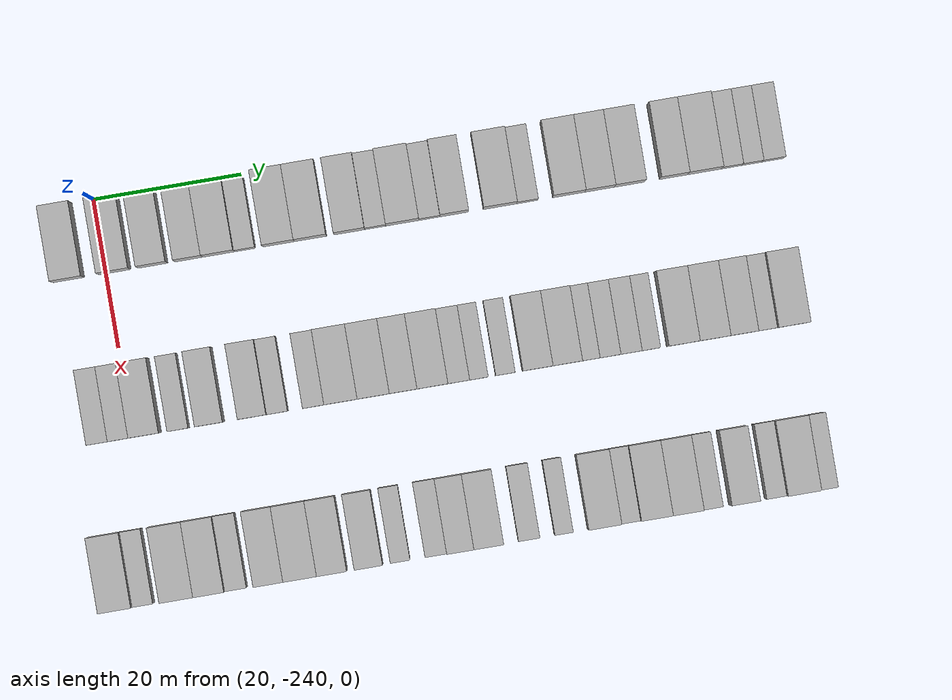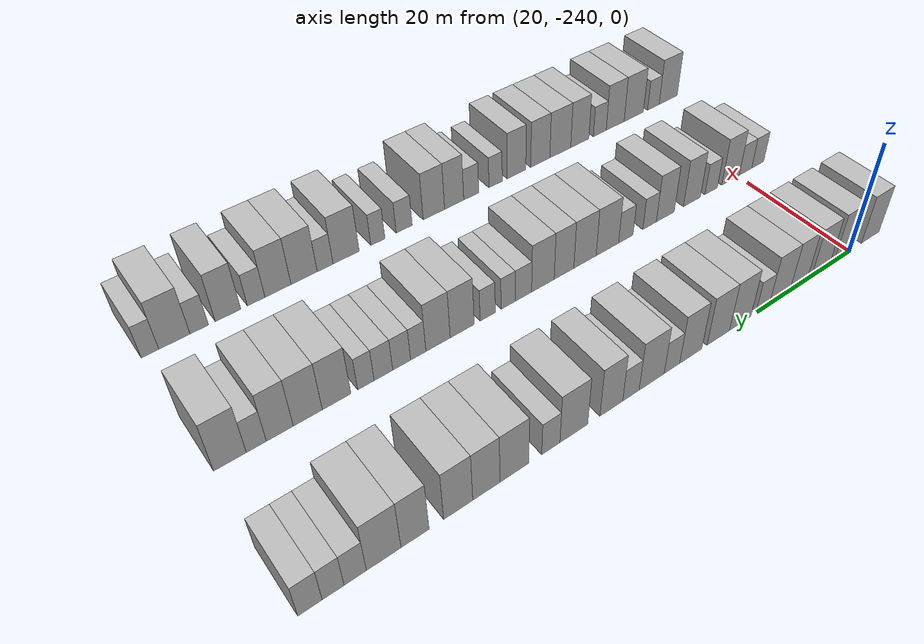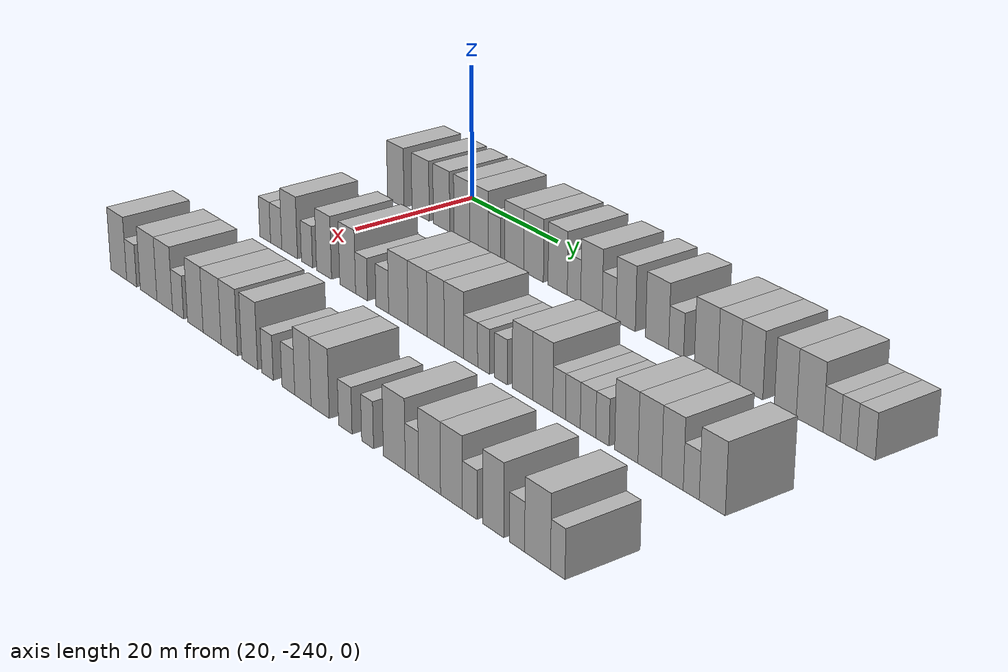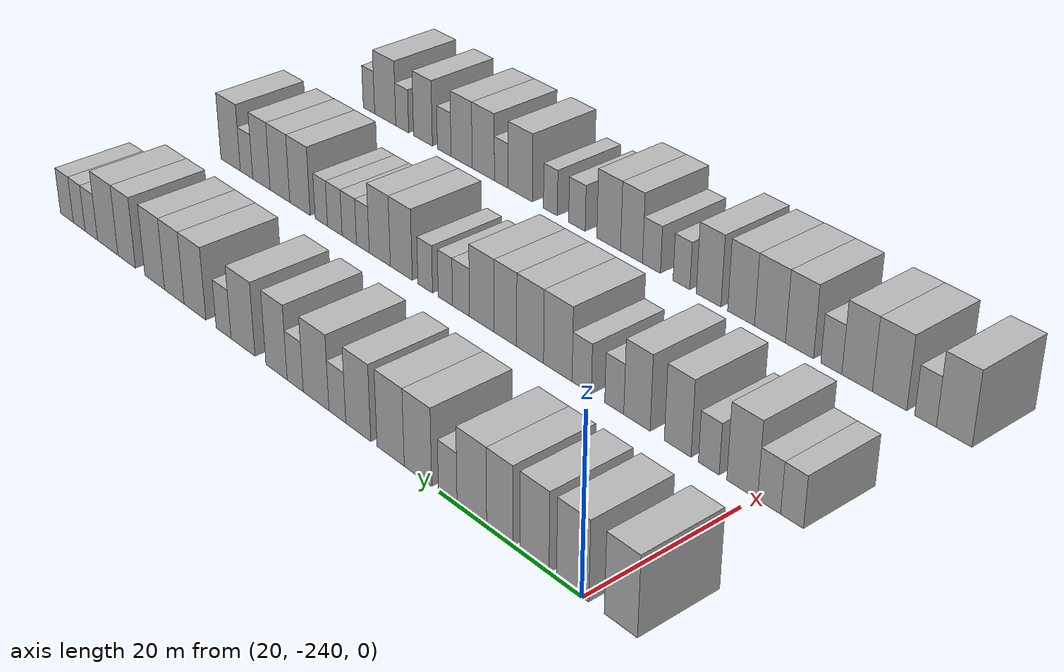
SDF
<sdf version="1.6">
 <world name="default">
  <model name="building_1">
   <static>1</static>
   <pose>25.0000 -244.9082 0 0.000000 0.000000 0.000000</pose>
   <link name="link">
    <pose>0 0 4.50 0 0 0</pose>
    <collision name="collision"><geometry><box><size>10.0000 4.1835 9.0000</size></box></geometry></collision>
    <visual name="visual">
     <cast_shadows>0</cast_shadows>
     <geometry><box><size>10.0000 4.1835 9.0000</size></box></geometry>
     <material>
      <script>
       <uri>model://HANNAS_wall/materials/scripts</uri>
       <uri>model://HANNAS_wall/materials/textures</uri>
       <name>vrc/HANNAS_wall</name>
      </script>
     </material>
    </visual>
   </link>
  </model>
  <model name="building_2">
   <static>1</static>
   <pose>25.0000 -238.6850 0 0.000000 0.000000 0.000000</pose>
   <link name="link">
    <pose>0 0 4.50 0 0 0</pose>
    <collision name="collision"><geometry><box><size>10.0000 4.2630 9.0000</size></box></geometry></collision>
    <visual name="visual">
     <cast_shadows>0</cast_shadows>
     <geometry><box><size>10.0000 4.2630 9.0000</size></box></geometry>
     <material>
      <script>
       <uri>model://HANNAS_wall/materials/scripts</uri>
       <uri>model://HANNAS_wall/materials/textures</uri>
       <name>vrc/HANNAS_wall</name>
      </script>
     </material>
    </visual>
   </link>
  </model>
  <model name="building_3">
   <static>1</static>
   <pose>25.0000 -233.5706 0 0.000000 0.000000 0.000000</pose>
   <link name="link">
    <pose>0 0 4.50 0 0 0</pose>
    <collision name="collision"><geometry><box><size>10.0000 3.9658 9.0000</size></box></geometry></collision>
    <visual name="visual">
     <cast_shadows>0</cast_shadows>
     <geometry><box><size>10.0000 3.9658 9.0000</size></box></geometry>
     <material>
      <script>
       <uri>model://HANNAS_wall/materials/scripts</uri>
       <uri>model://HANNAS_wall/materials/textures</uri>
       <name>vrc/HANNAS_wall</name>
      </script>
     </material>
    </visual>
   </link>
  </model>
  <model name="building_4">
   <static>1</static>
   <pose>25.0000 -228.7367 0 0.000000 0.000000 0.000000</pose>
   <link name="link">
    <pose>0 0 4.50 0 0 0</pose>
    <collision name="collision"><geometry><box><size>10.0000 3.7020 9.0000</size></box></geometry></collision>
    <visual name="visual">
     <cast_shadows>0</cast_shadows>
     <geometry><box><size>10.0000 3.7020 9.0000</size></box></geometry>
     <material>
      <script>
       <uri>model://HANNAS_wall/materials/scripts</uri>
       <uri>model://HANNAS_wall/materials/textures</uri>
       <name>vrc/HANNAS_wall</name>
      </script>
     </material>
    </visual>
   </link>
  </model>
  <model name="building_5">
   <static>1</static>
   <pose>25.0000 -224.7353 0 0.000000 0.000000 0.000000</pose>
   <link name="link">
    <pose>0 0 4.50 0 0 0</pose>
    <collision name="collision"><geometry><box><size>10.0000 4.3007 9.0000</size></box></geometry></collision>
    <visual name="visual">
     <cast_shadows>0</cast_shadows>
     <geometry><box><size>10.0000 4.3007 9.0000</size></box></geometry>
     <material>
      <script>
       <uri>model://HANNAS_wall/materials/scripts</uri>
       <uri>model://HANNAS_wall/materials/textures</uri>
       <name>vrc/HANNAS_wall</name>
      </script>
     </material>
    </visual>
   </link>
  </model>
  <model name="building_6">
   <static>1</static>
   <pose>25.0000 -221.1922 0 0.000000 0.000000 0.000000</pose>
   <link name="link">
    <pose>0 0 3.00 0 0 0</pose>
    <collision name="collision"><geometry><box><size>10.0000 2.7856 6.0000</size></box></geometry></collision>
    <visual name="visual">
     <cast_shadows>0</cast_shadows>
     <geometry><box><size>10.0000 2.7856 6.0000</size></box></geometry>
     <material>
      <script>
       <uri>model://HANNAS_wall/materials/scripts</uri>
       <uri>model://HANNAS_wall/materials/textures</uri>
       <name>vrc/HANNAS_wall</name>
      </script>
     </material>
    </visual>
   </link>
  </model>
  <model name="building_7">
   <static>1</static>
   <pose>25.0000 -216.6792 0 0.000000 0.000000 0.000000</pose>
   <link name="link">
    <pose>0 0 4.50 0 0 0</pose>
    <collision name="collision"><geometry><box><size>10.0000 4.2403 9.0000</size></box></geometry></collision>
    <visual name="visual">
     <cast_shadows>0</cast_shadows>
     <geometry><box><size>10.0000 4.2403 9.0000</size></box></geometry>
     <material>
      <script>
       <uri>model://HANNAS_wall/materials/scripts</uri>
       <uri>model://HANNAS_wall/materials/textures</uri>
       <name>vrc/HANNAS_wall</name>
      </script>
     </material>
    </visual>
   </link>
  </model>
  <model name="building_8">
   <static>1</static>
   <pose>25.0000 -212.3979 0 0.000000 0.000000 0.000000</pose>
   <link name="link">
    <pose>0 0 4.50 0 0 0</pose>
    <collision name="collision"><geometry><box><size>10.0000 4.3224 9.0000</size></box></geometry></collision>
    <visual name="visual">
     <cast_shadows>0</cast_shadows>
     <geometry><box><size>10.0000 4.3224 9.0000</size></box></geometry>
     <material>
      <script>
       <uri>model://HANNAS_wall/materials/scripts</uri>
       <uri>model://HANNAS_wall/materials/textures</uri>
       <name>vrc/HANNAS_wall</name>
      </script>
     </material>
    </visual>
   </link>
  </model>
  <model name="building_9">
   <static>1</static>
   <pose>25.0000 -207.1791 0 0.000000 0.000000 0.000000</pose>
   <link name="link">
    <pose>0 0 4.50 0 0 0</pose>
    <collision name="collision"><geometry><box><size>10.0000 4.1153 9.0000</size></box></geometry></collision>
    <visual name="visual">
     <cast_shadows>0</cast_shadows>
     <geometry><box><size>10.0000 4.1153 9.0000</size></box></geometry>
     <material>
      <script>
       <uri>model://HANNAS_wall/materials/scripts</uri>
       <uri>model://HANNAS_wall/materials/textures</uri>
       <name>vrc/HANNAS_wall</name>
      </script>
     </material>
    </visual>
   </link>
  </model>
  <model name="building_10">
   <static>1</static>
   <pose>25.0000 -203.7104 0 0.000000 0.000000 0.000000</pose>
   <link name="link">
    <pose>0 0 3.00 0 0 0</pose>
    <collision name="collision"><geometry><box><size>10.0000 2.8221 6.0000</size></box></geometry></collision>
    <visual name="visual">
     <cast_shadows>0</cast_shadows>
     <geometry><box><size>10.0000 2.8221 6.0000</size></box></geometry>
     <material>
      <script>
       <uri>model://HANNAS_wall/materials/scripts</uri>
       <uri>model://HANNAS_wall/materials/textures</uri>
       <name>vrc/HANNAS_wall</name>
      </script>
     </material>
    </visual>
   </link>
  </model>
  <model name="building_11">
   <static>1</static>
   <pose>25.0000 -200.0836 0 0.000000 0.000000 0.000000</pose>
   <link name="link">
    <pose>0 0 4.50 0 0 0</pose>
    <collision name="collision"><geometry><box><size>10.0000 4.4316 9.0000</size></box></geometry></collision>
    <visual name="visual">
     <cast_shadows>0</cast_shadows>
     <geometry><box><size>10.0000 4.4316 9.0000</size></box></geometry>
     <material>
      <script>
       <uri>model://HANNAS_wall/materials/scripts</uri>
       <uri>model://HANNAS_wall/materials/textures</uri>
       <name>vrc/HANNAS_wall</name>
      </script>
     </material>
    </visual>
   </link>
  </model>
  <model name="building_12">
   <static>1</static>
   <pose>25.0000 -196.4589 0 0.000000 0.000000 0.000000</pose>
   <link name="link">
    <pose>0 0 3.00 0 0 0</pose>
    <collision name="collision"><geometry><box><size>10.0000 2.8177 6.0000</size></box></geometry></collision>
    <visual name="visual">
     <cast_shadows>0</cast_shadows>
     <geometry><box><size>10.0000 2.8177 6.0000</size></box></geometry>
     <material>
      <script>
       <uri>model://HANNAS_wall/materials/scripts</uri>
       <uri>model://HANNAS_wall/materials/textures</uri>
       <name>vrc/HANNAS_wall</name>
      </script>
     </material>
    </visual>
   </link>
  </model>
  <model name="building_13">
   <static>1</static>
   <pose>25.0000 -193.1327 0 0.000000 0.000000 0.000000</pose>
   <link name="link">
    <pose>0 0 4.50 0 0 0</pose>
    <collision name="collision"><geometry><box><size>10.0000 3.8347 9.0000</size></box></geometry></collision>
    <visual name="visual">
     <cast_shadows>0</cast_shadows>
     <geometry><box><size>10.0000 3.8347 9.0000</size></box></geometry>
     <material>
      <script>
       <uri>model://HANNAS_wall/materials/scripts</uri>
       <uri>model://HANNAS_wall/materials/textures</uri>
       <name>vrc/HANNAS_wall</name>
      </script>
     </material>
    </visual>
   </link>
  </model>
  <model name="building_14">
   <static>1</static>
   <pose>25.0000 -186.9744 0 0.000000 0.000000 0.000000</pose>
   <link name="link">
    <pose>0 0 4.50 0 0 0</pose>
    <collision name="collision"><geometry><box><size>10.0000 4.4820 9.0000</size></box></geometry></collision>
    <visual name="visual">
     <cast_shadows>0</cast_shadows>
     <geometry><box><size>10.0000 4.4820 9.0000</size></box></geometry>
     <material>
      <script>
       <uri>model://HANNAS_wall/materials/scripts</uri>
       <uri>model://HANNAS_wall/materials/textures</uri>
       <name>vrc/HANNAS_wall</name>
      </script>
     </material>
    </visual>
   </link>
  </model>
  <model name="building_15">
   <static>1</static>
   <pose>25.0000 -183.3123 0 0.000000 0.000000 0.000000</pose>
   <link name="link">
    <pose>0 0 3.00 0 0 0</pose>
    <collision name="collision"><geometry><box><size>10.0000 2.8422 6.0000</size></box></geometry></collision>
    <visual name="visual">
     <cast_shadows>0</cast_shadows>
     <geometry><box><size>10.0000 2.8422 6.0000</size></box></geometry>
     <material>
      <script>
       <uri>model://HANNAS_wall/materials/scripts</uri>
       <uri>model://HANNAS_wall/materials/textures</uri>
       <name>vrc/HANNAS_wall</name>
      </script>
     </material>
    </visual>
   </link>
  </model>
  <model name="building_16">
   <static>1</static>
   <pose>25.0000 -177.7389 0 0.000000 0.000000 0.000000</pose>
   <link name="link">
    <pose>0 0 4.50 0 0 0</pose>
    <collision name="collision"><geometry><box><size>10.0000 4.3045 9.0000</size></box></geometry></collision>
    <visual name="visual">
     <cast_shadows>0</cast_shadows>
     <geometry><box><size>10.0000 4.3045 9.0000</size></box></geometry>
     <material>
      <script>
       <uri>model://HANNAS_wall/materials/scripts</uri>
       <uri>model://HANNAS_wall/materials/textures</uri>
       <name>vrc/HANNAS_wall</name>
      </script>
     </material>
    </visual>
   </link>
  </model>
  <model name="building_17">
   <static>1</static>
   <pose>25.0000 -173.6084 0 0.000000 0.000000 0.000000</pose>
   <link name="link">
    <pose>0 0 4.50 0 0 0</pose>
    <collision name="collision"><geometry><box><size>10.0000 3.9565 9.0000</size></box></geometry></collision>
    <visual name="visual">
     <cast_shadows>0</cast_shadows>
     <geometry><box><size>10.0000 3.9565 9.0000</size></box></geometry>
     <material>
      <script>
       <uri>model://HANNAS_wall/materials/scripts</uri>
       <uri>model://HANNAS_wall/materials/textures</uri>
       <name>vrc/HANNAS_wall</name>
      </script>
     </material>
    </visual>
   </link>
  </model>
  <model name="building_18">
   <static>1</static>
   <pose>25.0000 -169.5832 0 0.000000 0.000000 0.000000</pose>
   <link name="link">
    <pose>0 0 4.50 0 0 0</pose>
    <collision name="collision"><geometry><box><size>10.0000 4.0939 9.0000</size></box></geometry></collision>
    <visual name="visual">
     <cast_shadows>0</cast_shadows>
     <geometry><box><size>10.0000 4.0939 9.0000</size></box></geometry>
     <material>
      <script>
       <uri>model://HANNAS_wall/materials/scripts</uri>
       <uri>model://HANNAS_wall/materials/textures</uri>
       <name>vrc/HANNAS_wall</name>
      </script>
     </material>
    </visual>
   </link>
  </model>
  <model name="building_19">
   <static>1</static>
   <pose>25.0000 -163.6562 0 0.000000 0.000000 0.000000</pose>
   <link name="link">
    <pose>0 0 4.50 0 0 0</pose>
    <collision name="collision"><geometry><box><size>10.0000 3.7602 9.0000</size></box></geometry></collision>
    <visual name="visual">
     <cast_shadows>0</cast_shadows>
     <geometry><box><size>10.0000 3.7602 9.0000</size></box></geometry>
     <material>
      <script>
       <uri>model://HANNAS_wall/materials/scripts</uri>
       <uri>model://HANNAS_wall/materials/textures</uri>
       <name>vrc/HANNAS_wall</name>
      </script>
     </material>
    </visual>
   </link>
  </model>
  <model name="building_20">
   <static>1</static>
   <pose>25.0000 -159.5274 0 0.000000 0.000000 0.000000</pose>
   <link name="link">
    <pose>0 0 4.50 0 0 0</pose>
    <collision name="collision"><geometry><box><size>10.0000 4.4974 9.0000</size></box></geometry></collision>
    <visual name="visual">
     <cast_shadows>0</cast_shadows>
     <geometry><box><size>10.0000 4.4974 9.0000</size></box></geometry>
     <material>
      <script>
       <uri>model://HANNAS_wall/materials/scripts</uri>
       <uri>model://HANNAS_wall/materials/textures</uri>
       <name>vrc/HANNAS_wall</name>
      </script>
     </material>
    </visual>
   </link>
  </model>
  <model name="building_21">
   <static>1</static>
   <pose>25.0000 -155.8811 0 0.000000 0.000000 0.000000</pose>
   <link name="link">
    <pose>0 0 3.00 0 0 0</pose>
    <collision name="collision"><geometry><box><size>10.0000 2.7952 6.0000</size></box></geometry></collision>
    <visual name="visual">
     <cast_shadows>0</cast_shadows>
     <geometry><box><size>10.0000 2.7952 6.0000</size></box></geometry>
     <material>
      <script>
       <uri>model://HANNAS_wall/materials/scripts</uri>
       <uri>model://HANNAS_wall/materials/textures</uri>
       <name>vrc/HANNAS_wall</name>
      </script>
     </material>
    </visual>
   </link>
  </model>
  <model name="building_22">
   <static>1</static>
   <pose>25.0000 -153.1354 0 0.000000 0.000000 0.000000</pose>
   <link name="link">
    <pose>0 0 3.00 0 0 0</pose>
    <collision name="collision"><geometry><box><size>10.0000 2.6961 6.0000</size></box></geometry></collision>
    <visual name="visual">
     <cast_shadows>0</cast_shadows>
     <geometry><box><size>10.0000 2.6961 6.0000</size></box></geometry>
     <material>
      <script>
       <uri>model://HANNAS_wall/materials/scripts</uri>
       <uri>model://HANNAS_wall/materials/textures</uri>
       <name>vrc/HANNAS_wall</name>
      </script>
     </material>
    </visual>
   </link>
  </model>
  <model name="building_23">
   <static>1</static>
   <pose>25.0000 -150.3138 0 0.000000 0.000000 0.000000</pose>
   <link name="link">
    <pose>0 0 3.00 0 0 0</pose>
    <collision name="collision"><geometry><box><size>10.0000 2.9470 6.0000</size></box></geometry></collision>
    <visual name="visual">
     <cast_shadows>0</cast_shadows>
     <geometry><box><size>10.0000 2.9470 6.0000</size></box></geometry>
     <material>
      <script>
       <uri>model://HANNAS_wall/materials/scripts</uri>
       <uri>model://HANNAS_wall/materials/textures</uri>
       <name>vrc/HANNAS_wall</name>
      </script>
     </material>
    </visual>
   </link>
  </model>
  <model name="building_124">
   <static>1</static>
   <pose>47.0000 -244.5716 0 0.000000 0.000000 0.000000</pose>
   <link name="link">
    <pose>0 0 3.00 0 0 0</pose>
    <collision name="collision"><geometry><box><size>10.0000 2.8569 6.0000</size></box></geometry></collision>
    <visual name="visual">
     <cast_shadows>0</cast_shadows>
     <geometry><box><size>10.0000 2.8569 6.0000</size></box></geometry>
     <material>
      <script>
       <uri>model://HANNAS_wall/materials/scripts</uri>
       <uri>model://HANNAS_wall/materials/textures</uri>
       <name>vrc/HANNAS_wall</name>
      </script>
     </material>
    </visual>
   </link>
  </model>
  <model name="building_125">
   <static>1</static>
   <pose>47.0000 -241.6814 0 0.000000 0.000000 0.000000</pose>
   <link name="link">
    <pose>0 0 3.00 0 0 0</pose>
    <collision name="collision"><geometry><box><size>10.0000 2.9236 6.0000</size></box></geometry></collision>
    <visual name="visual">
     <cast_shadows>0</cast_shadows>
     <geometry><box><size>10.0000 2.9236 6.0000</size></box></geometry>
     <material>
      <script>
       <uri>model://HANNAS_wall/materials/scripts</uri>
       <uri>model://HANNAS_wall/materials/textures</uri>
       <name>vrc/HANNAS_wall</name>
      </script>
     </material>
    </visual>
   </link>
  </model>
  <model name="building_126">
   <static>1</static>
   <pose>47.0000 -238.2048 0 0.000000 0.000000 0.000000</pose>
   <link name="link">
    <pose>0 0 4.50 0 0 0</pose>
    <collision name="collision"><geometry><box><size>10.0000 4.0295 9.0000</size></box></geometry></collision>
    <visual name="visual">
     <cast_shadows>0</cast_shadows>
     <geometry><box><size>10.0000 4.0295 9.0000</size></box></geometry>
     <material>
      <script>
       <uri>model://HANNAS_wall/materials/scripts</uri>
       <uri>model://HANNAS_wall/materials/textures</uri>
       <name>vrc/HANNAS_wall</name>
      </script>
     </material>
    </visual>
   </link>
  </model>
  <model name="building_127">
   <static>1</static>
   <pose>47.0000 -233.7948 0 0.000000 0.000000 0.000000</pose>
   <link name="link">
    <pose>0 0 3.00 0 0 0</pose>
    <collision name="collision"><geometry><box><size>10.0000 2.7905 6.0000</size></box></geometry></collision>
    <visual name="visual">
     <cast_shadows>0</cast_shadows>
     <geometry><box><size>10.0000 2.7905 6.0000</size></box></geometry>
     <material>
      <script>
       <uri>model://HANNAS_wall/materials/scripts</uri>
       <uri>model://HANNAS_wall/materials/textures</uri>
       <name>vrc/HANNAS_wall</name>
      </script>
     </material>
    </visual>
   </link>
  </model>
  <model name="building_128">
   <static>1</static>
   <pose>47.0000 -229.5479 0 0.000000 0.000000 0.000000</pose>
   <link name="link">
    <pose>0 0 4.50 0 0 0</pose>
    <collision name="collision"><geometry><box><size>10.0000 3.7033 9.0000</size></box></geometry></collision>
    <visual name="visual">
     <cast_shadows>0</cast_shadows>
     <geometry><box><size>10.0000 3.7033 9.0000</size></box></geometry>
     <material>
      <script>
       <uri>model://HANNAS_wall/materials/scripts</uri>
       <uri>model://HANNAS_wall/materials/textures</uri>
       <name>vrc/HANNAS_wall</name>
      </script>
     </material>
    </visual>
   </link>
  </model>
  <model name="building_129">
   <static>1</static>
   <pose>47.0000 -223.8020 0 0.000000 0.000000 0.000000</pose>
   <link name="link">
    <pose>0 0 4.50 0 0 0</pose>
    <collision name="collision"><geometry><box><size>10.0000 3.7887 9.0000</size></box></geometry></collision>
    <visual name="visual">
     <cast_shadows>0</cast_shadows>
     <geometry><box><size>10.0000 3.7887 9.0000</size></box></geometry>
     <material>
      <script>
       <uri>model://HANNAS_wall/materials/scripts</uri>
       <uri>model://HANNAS_wall/materials/textures</uri>
       <name>vrc/HANNAS_wall</name>
      </script>
     </material>
    </visual>
   </link>
  </model>
  <model name="building_130">
   <static>1</static>
   <pose>47.0000 -220.5128 0 0.000000 0.000000 0.000000</pose>
   <link name="link">
    <pose>0 0 3.00 0 0 0</pose>
    <collision name="collision"><geometry><box><size>10.0000 2.7896 6.0000</size></box></geometry></collision>
    <visual name="visual">
     <cast_shadows>0</cast_shadows>
     <geometry><box><size>10.0000 2.7896 6.0000</size></box></geometry>
     <material>
      <script>
       <uri>model://HANNAS_wall/materials/scripts</uri>
       <uri>model://HANNAS_wall/materials/textures</uri>
       <name>vrc/HANNAS_wall</name>
      </script>
     </material>
    </visual>
   </link>
  </model>
  <model name="building_131">
   <static>1</static>
   <pose>47.0000 -215.6573 0 0.000000 0.000000 0.000000</pose>
   <link name="link">
    <pose>0 0 3.00 0 0 0</pose>
    <collision name="collision"><geometry><box><size>10.0000 2.9215 6.0000</size></box></geometry></collision>
    <visual name="visual">
     <cast_shadows>0</cast_shadows>
     <geometry><box><size>10.0000 2.9215 6.0000</size></box></geometry>
     <material>
      <script>
       <uri>model://HANNAS_wall/materials/scripts</uri>
       <uri>model://HANNAS_wall/materials/textures</uri>
       <name>vrc/HANNAS_wall</name>
      </script>
     </material>
    </visual>
   </link>
  </model>
  <model name="building_132">
   <static>1</static>
   <pose>47.0000 -211.9879 0 0.000000 0.000000 0.000000</pose>
   <link name="link">
    <pose>0 0 4.50 0 0 0</pose>
    <collision name="collision"><geometry><box><size>10.0000 4.4173 9.0000</size></box></geometry></collision>
    <visual name="visual">
     <cast_shadows>0</cast_shadows>
     <geometry><box><size>10.0000 4.4173 9.0000</size></box></geometry>
     <material>
      <script>
       <uri>model://HANNAS_wall/materials/scripts</uri>
       <uri>model://HANNAS_wall/materials/textures</uri>
       <name>vrc/HANNAS_wall</name>
      </script>
     </material>
    </visual>
   </link>
  </model>
  <model name="building_133">
   <static>1</static>
   <pose>47.0000 -207.6420 0 0.000000 0.000000 0.000000</pose>
   <link name="link">
    <pose>0 0 4.50 0 0 0</pose>
    <collision name="collision"><geometry><box><size>10.0000 4.2745 9.0000</size></box></geometry></collision>
    <visual name="visual">
     <cast_shadows>0</cast_shadows>
     <geometry><box><size>10.0000 4.2745 9.0000</size></box></geometry>
     <material>
      <script>
       <uri>model://HANNAS_wall/materials/scripts</uri>
       <uri>model://HANNAS_wall/materials/textures</uri>
       <name>vrc/HANNAS_wall</name>
      </script>
     </material>
    </visual>
   </link>
  </model>
  <model name="building_134">
   <static>1</static>
   <pose>47.0000 -203.6676 0 0.000000 0.000000 0.000000</pose>
   <link name="link">
    <pose>0 0 4.50 0 0 0</pose>
    <collision name="collision"><geometry><box><size>10.0000 3.6743 9.0000</size></box></geometry></collision>
    <visual name="visual">
     <cast_shadows>0</cast_shadows>
     <geometry><box><size>10.0000 3.6743 9.0000</size></box></geometry>
     <material>
      <script>
       <uri>model://HANNAS_wall/materials/scripts</uri>
       <uri>model://HANNAS_wall/materials/textures</uri>
       <name>vrc/HANNAS_wall</name>
      </script>
     </material>
    </visual>
   </link>
  </model>
  <model name="building_135">
   <static>1</static>
   <pose>47.0000 -199.7702 0 0.000000 0.000000 0.000000</pose>
   <link name="link">
    <pose>0 0 4.50 0 0 0</pose>
    <collision name="collision"><geometry><box><size>10.0000 4.1204 9.0000</size></box></geometry></collision>
    <visual name="visual">
     <cast_shadows>0</cast_shadows>
     <geometry><box><size>10.0000 4.1204 9.0000</size></box></geometry>
     <material>
      <script>
       <uri>model://HANNAS_wall/materials/scripts</uri>
       <uri>model://HANNAS_wall/materials/textures</uri>
       <name>vrc/HANNAS_wall</name>
      </script>
     </material>
    </visual>
   </link>
  </model>
  <model name="building_136">
   <static>1</static>
   <pose>47.0000 -196.2594 0 0.000000 0.000000 0.000000</pose>
   <link name="link">
    <pose>0 0 3.00 0 0 0</pose>
    <collision name="collision"><geometry><box><size>10.0000 2.9012 6.0000</size></box></geometry></collision>
    <visual name="visual">
     <cast_shadows>0</cast_shadows>
     <geometry><box><size>10.0000 2.9012 6.0000</size></box></geometry>
     <material>
      <script>
       <uri>model://HANNAS_wall/materials/scripts</uri>
       <uri>model://HANNAS_wall/materials/textures</uri>
       <name>vrc/HANNAS_wall</name>
      </script>
     </material>
    </visual>
   </link>
  </model>
  <model name="building_137">
   <static>1</static>
   <pose>47.0000 -193.5684 0 0.000000 0.000000 0.000000</pose>
   <link name="link">
    <pose>0 0 3.00 0 0 0</pose>
    <collision name="collision"><geometry><box><size>10.0000 2.4809 6.0000</size></box></geometry></collision>
    <visual name="visual">
     <cast_shadows>0</cast_shadows>
     <geometry><box><size>10.0000 2.4809 6.0000</size></box></geometry>
     <material>
      <script>
       <uri>model://HANNAS_wall/materials/scripts</uri>
       <uri>model://HANNAS_wall/materials/textures</uri>
       <name>vrc/HANNAS_wall</name>
      </script>
     </material>
    </visual>
   </link>
  </model>
  <model name="building_138">
   <static>1</static>
   <pose>47.0000 -190.0298 0 0.000000 0.000000 0.000000</pose>
   <link name="link">
    <pose>0 0 3.00 0 0 0</pose>
    <collision name="collision"><geometry><box><size>10.0000 2.5963 6.0000</size></box></geometry></collision>
    <visual name="visual">
     <cast_shadows>0</cast_shadows>
     <geometry><box><size>10.0000 2.5963 6.0000</size></box></geometry>
     <material>
      <script>
       <uri>model://HANNAS_wall/materials/scripts</uri>
       <uri>model://HANNAS_wall/materials/textures</uri>
       <name>vrc/HANNAS_wall</name>
      </script>
     </material>
    </visual>
   </link>
  </model>
  <model name="building_139">
   <static>1</static>
   <pose>47.0000 -185.7372 0 0.000000 0.000000 0.000000</pose>
   <link name="link">
    <pose>0 0 4.50 0 0 0</pose>
    <collision name="collision"><geometry><box><size>10.0000 3.9888 9.0000</size></box></geometry></collision>
    <visual name="visual">
     <cast_shadows>0</cast_shadows>
     <geometry><box><size>10.0000 3.9888 9.0000</size></box></geometry>
     <material>
      <script>
       <uri>model://HANNAS_wall/materials/scripts</uri>
       <uri>model://HANNAS_wall/materials/textures</uri>
       <name>vrc/HANNAS_wall</name>
      </script>
     </material>
    </visual>
   </link>
  </model>
  <model name="building_140">
   <static>1</static>
   <pose>47.0000 -181.7795 0 0.000000 0.000000 0.000000</pose>
   <link name="link">
    <pose>0 0 4.50 0 0 0</pose>
    <collision name="collision"><geometry><box><size>10.0000 3.9267 9.0000</size></box></geometry></collision>
    <visual name="visual">
     <cast_shadows>0</cast_shadows>
     <geometry><box><size>10.0000 3.9267 9.0000</size></box></geometry>
     <material>
      <script>
       <uri>model://HANNAS_wall/materials/scripts</uri>
       <uri>model://HANNAS_wall/materials/textures</uri>
       <name>vrc/HANNAS_wall</name>
      </script>
     </material>
    </visual>
   </link>
  </model>
  <model name="building_141">
   <static>1</static>
   <pose>47.0000 -178.6076 0 0.000000 0.000000 0.000000</pose>
   <link name="link">
    <pose>0 0 3.00 0 0 0</pose>
    <collision name="collision"><geometry><box><size>10.0000 2.4170 6.0000</size></box></geometry></collision>
    <visual name="visual">
     <cast_shadows>0</cast_shadows>
     <geometry><box><size>10.0000 2.4170 6.0000</size></box></geometry>
     <material>
      <script>
       <uri>model://HANNAS_wall/materials/scripts</uri>
       <uri>model://HANNAS_wall/materials/textures</uri>
       <name>vrc/HANNAS_wall</name>
      </script>
     </material>
    </visual>
   </link>
  </model>
  <model name="building_142">
   <static>1</static>
   <pose>47.0000 -176.0089 0 0.000000 0.000000 0.000000</pose>
   <link name="link">
    <pose>0 0 3.00 0 0 0</pose>
    <collision name="collision"><geometry><box><size>10.0000 2.7804 6.0000</size></box></geometry></collision>
    <visual name="visual">
     <cast_shadows>0</cast_shadows>
     <geometry><box><size>10.0000 2.7804 6.0000</size></box></geometry>
     <material>
      <script>
       <uri>model://HANNAS_wall/materials/scripts</uri>
       <uri>model://HANNAS_wall/materials/textures</uri>
       <name>vrc/HANNAS_wall</name>
      </script>
     </material>
    </visual>
   </link>
  </model>
  <model name="building_143">
   <static>1</static>
   <pose>47.0000 -173.2004 0 0.000000 0.000000 0.000000</pose>
   <link name="link">
    <pose>0 0 3.00 0 0 0</pose>
    <collision name="collision"><geometry><box><size>10.0000 2.8364 6.0000</size></box></geometry></collision>
    <visual name="visual">
     <cast_shadows>0</cast_shadows>
     <geometry><box><size>10.0000 2.8364 6.0000</size></box></geometry>
     <material>
      <script>
       <uri>model://HANNAS_wall/materials/scripts</uri>
       <uri>model://HANNAS_wall/materials/textures</uri>
       <name>vrc/HANNAS_wall</name>
      </script>
     </material>
    </visual>
   </link>
  </model>
  <model name="building_144">
   <static>1</static>
   <pose>47.0000 -170.5539 0 0.000000 0.000000 0.000000</pose>
   <link name="link">
    <pose>0 0 3.00 0 0 0</pose>
    <collision name="collision"><geometry><box><size>10.0000 2.4566 6.0000</size></box></geometry></collision>
    <visual name="visual">
     <cast_shadows>0</cast_shadows>
     <geometry><box><size>10.0000 2.4566 6.0000</size></box></geometry>
     <material>
      <script>
       <uri>model://HANNAS_wall/materials/scripts</uri>
       <uri>model://HANNAS_wall/materials/textures</uri>
       <name>vrc/HANNAS_wall</name>
      </script>
     </material>
    </visual>
   </link>
  </model>
  <model name="building_145">
   <static>1</static>
   <pose>47.0000 -166.2543 0 0.000000 0.000000 0.000000</pose>
   <link name="link">
    <pose>0 0 4.50 0 0 0</pose>
    <collision name="collision"><geometry><box><size>10.0000 4.1425 9.0000</size></box></geometry></collision>
    <visual name="visual">
     <cast_shadows>0</cast_shadows>
     <geometry><box><size>10.0000 4.1425 9.0000</size></box></geometry>
     <material>
      <script>
       <uri>model://HANNAS_wall/materials/scripts</uri>
       <uri>model://HANNAS_wall/materials/textures</uri>
       <name>vrc/HANNAS_wall</name>
      </script>
     </material>
    </visual>
   </link>
  </model>
  <model name="building_146">
   <static>1</static>
   <pose>47.0000 -162.1371 0 0.000000 0.000000 0.000000</pose>
   <link name="link">
    <pose>0 0 4.50 0 0 0</pose>
    <collision name="collision"><geometry><box><size>10.0000 4.0920 9.0000</size></box></geometry></collision>
    <visual name="visual">
     <cast_shadows>0</cast_shadows>
     <geometry><box><size>10.0000 4.0920 9.0000</size></box></geometry>
     <material>
      <script>
       <uri>model://HANNAS_wall/materials/scripts</uri>
       <uri>model://HANNAS_wall/materials/textures</uri>
       <name>vrc/HANNAS_wall</name>
      </script>
     </material>
    </visual>
   </link>
  </model>
  <model name="building_147">
   <static>1</static>
   <pose>47.0000 -158.2473 0 0.000000 0.000000 0.000000</pose>
   <link name="link">
    <pose>0 0 4.50 0 0 0</pose>
    <collision name="collision"><geometry><box><size>10.0000 3.6875 9.0000</size></box></geometry></collision>
    <visual name="visual">
     <cast_shadows>0</cast_shadows>
     <geometry><box><size>10.0000 3.6875 9.0000</size></box></geometry>
     <material>
      <script>
       <uri>model://HANNAS_wall/materials/scripts</uri>
       <uri>model://HANNAS_wall/materials/textures</uri>
       <name>vrc/HANNAS_wall</name>
      </script>
     </material>
    </visual>
   </link>
  </model>
  <model name="building_148">
   <static>1</static>
   <pose>47.0000 -155.0669 0 0.000000 0.000000 0.000000</pose>
   <link name="link">
    <pose>0 0 3.00 0 0 0</pose>
    <collision name="collision"><geometry><box><size>10.0000 2.6734 6.0000</size></box></geometry></collision>
    <visual name="visual">
     <cast_shadows>0</cast_shadows>
     <geometry><box><size>10.0000 2.6734 6.0000</size></box></geometry>
     <material>
      <script>
       <uri>model://HANNAS_wall/materials/scripts</uri>
       <uri>model://HANNAS_wall/materials/textures</uri>
       <name>vrc/HANNAS_wall</name>
      </script>
     </material>
    </visual>
   </link>
  </model>
  <model name="building_149">
   <static>1</static>
   <pose>47.0000 -151.5965 0 0.000000 0.000000 0.000000</pose>
   <link name="link">
    <pose>0 0 4.50 0 0 0</pose>
    <collision name="collision"><geometry><box><size>10.0000 4.2673 9.0000</size></box></geometry></collision>
    <visual name="visual">
     <cast_shadows>0</cast_shadows>
     <geometry><box><size>10.0000 4.2673 9.0000</size></box></geometry>
     <material>
      <script>
       <uri>model://HANNAS_wall/materials/scripts</uri>
       <uri>model://HANNAS_wall/materials/textures</uri>
       <name>vrc/HANNAS_wall</name>
      </script>
     </material>
    </visual>
   </link>
  </model>
  <model name="building_246">
   <static>1</static>
   <pose>69.0000 -245.7882 0 0.000000 0.000000 0.000000</pose>
   <link name="link">
    <pose>0 0 4.50 0 0 0</pose>
    <collision name="collision"><geometry><box><size>10.0000 4.4236 9.0000</size></box></geometry></collision>
    <visual name="visual">
     <cast_shadows>0</cast_shadows>
     <geometry><box><size>10.0000 4.4236 9.0000</size></box></geometry>
     <material>
      <script>
       <uri>model://HANNAS_wall/materials/scripts</uri>
       <uri>model://HANNAS_wall/materials/textures</uri>
       <name>vrc/HANNAS_wall</name>
      </script>
     </material>
    </visual>
   </link>
  </model>
  <model name="building_247">
   <static>1</static>
   <pose>69.0000 -242.2033 0 0.000000 0.000000 0.000000</pose>
   <link name="link">
    <pose>0 0 3.00 0 0 0</pose>
    <collision name="collision"><geometry><box><size>10.0000 2.7462 6.0000</size></box></geometry></collision>
    <visual name="visual">
     <cast_shadows>0</cast_shadows>
     <geometry><box><size>10.0000 2.7462 6.0000</size></box></geometry>
     <material>
      <script>
       <uri>model://HANNAS_wall/materials/scripts</uri>
       <uri>model://HANNAS_wall/materials/textures</uri>
       <name>vrc/HANNAS_wall</name>
      </script>
     </material>
    </visual>
   </link>
  </model>
  <model name="building_248">
   <static>1</static>
   <pose>69.0000 -237.5819 0 0.000000 0.000000 0.000000</pose>
   <link name="link">
    <pose>0 0 4.50 0 0 0</pose>
    <collision name="collision"><geometry><box><size>10.0000 4.4967 9.0000</size></box></geometry></collision>
    <visual name="visual">
     <cast_shadows>0</cast_shadows>
     <geometry><box><size>10.0000 4.4967 9.0000</size></box></geometry>
     <material>
      <script>
       <uri>model://HANNAS_wall/materials/scripts</uri>
       <uri>model://HANNAS_wall/materials/textures</uri>
       <name>vrc/HANNAS_wall</name>
      </script>
     </material>
    </visual>
   </link>
  </model>
  <model name="building_249">
   <static>1</static>
   <pose>69.0000 -233.2804 0 0.000000 0.000000 0.000000</pose>
   <link name="link">
    <pose>0 0 4.50 0 0 0</pose>
    <collision name="collision"><geometry><box><size>10.0000 4.1063 9.0000</size></box></geometry></collision>
    <visual name="visual">
     <cast_shadows>0</cast_shadows>
     <geometry><box><size>10.0000 4.1063 9.0000</size></box></geometry>
     <material>
      <script>
       <uri>model://HANNAS_wall/materials/scripts</uri>
       <uri>model://HANNAS_wall/materials/textures</uri>
       <name>vrc/HANNAS_wall</name>
      </script>
     </material>
    </visual>
   </link>
  </model>
  <model name="building_250">
   <static>1</static>
   <pose>69.0000 -229.7873 0 0.000000 0.000000 0.000000</pose>
   <link name="link">
    <pose>0 0 3.00 0 0 0</pose>
    <collision name="collision"><geometry><box><size>10.0000 2.8798 6.0000</size></box></geometry></collision>
    <visual name="visual">
     <cast_shadows>0</cast_shadows>
     <geometry><box><size>10.0000 2.8798 6.0000</size></box></geometry>
     <material>
      <script>
       <uri>model://HANNAS_wall/materials/scripts</uri>
       <uri>model://HANNAS_wall/materials/textures</uri>
       <name>vrc/HANNAS_wall</name>
      </script>
     </material>
    </visual>
   </link>
  </model>
  <model name="building_251">
   <static>1</static>
   <pose>69.0000 -225.3647 0 0.000000 0.000000 0.000000</pose>
   <link name="link">
    <pose>0 0 4.50 0 0 0</pose>
    <collision name="collision"><geometry><box><size>10.0000 3.9653 9.0000</size></box></geometry></collision>
    <visual name="visual">
     <cast_shadows>0</cast_shadows>
     <geometry><box><size>10.0000 3.9653 9.0000</size></box></geometry>
     <material>
      <script>
       <uri>model://HANNAS_wall/materials/scripts</uri>
       <uri>model://HANNAS_wall/materials/textures</uri>
       <name>vrc/HANNAS_wall</name>
      </script>
     </material>
    </visual>
   </link>
  </model>
  <model name="building_252">
   <static>1</static>
   <pose>69.0000 -221.1473 0 0.000000 0.000000 0.000000</pose>
   <link name="link">
    <pose>0 0 4.50 0 0 0</pose>
    <collision name="collision"><geometry><box><size>10.0000 4.4697 9.0000</size></box></geometry></collision>
    <visual name="visual">
     <cast_shadows>0</cast_shadows>
     <geometry><box><size>10.0000 4.4697 9.0000</size></box></geometry>
     <material>
      <script>
       <uri>model://HANNAS_wall/materials/scripts</uri>
       <uri>model://HANNAS_wall/materials/textures</uri>
       <name>vrc/HANNAS_wall</name>
      </script>
     </material>
    </visual>
   </link>
  </model>
  <model name="building_253">
   <static>1</static>
   <pose>69.0000 -216.9129 0 0.000000 0.000000 0.000000</pose>
   <link name="link">
    <pose>0 0 4.50 0 0 0</pose>
    <collision name="collision"><geometry><box><size>10.0000 3.9989 9.0000</size></box></geometry></collision>
    <visual name="visual">
     <cast_shadows>0</cast_shadows>
     <geometry><box><size>10.0000 3.9989 9.0000</size></box></geometry>
     <material>
      <script>
       <uri>model://HANNAS_wall/materials/scripts</uri>
       <uri>model://HANNAS_wall/materials/textures</uri>
       <name>vrc/HANNAS_wall</name>
      </script>
     </material>
    </visual>
   </link>
  </model>
  <model name="building_254">
   <static>1</static>
   <pose>69.0000 -212.0300 0 0.000000 0.000000 0.000000</pose>
   <link name="link">
    <pose>0 0 4.50 0 0 0</pose>
    <collision name="collision"><geometry><box><size>10.0000 3.7669 9.0000</size></box></geometry></collision>
    <visual name="visual">
     <cast_shadows>0</cast_shadows>
     <geometry><box><size>10.0000 3.7669 9.0000</size></box></geometry>
     <material>
      <script>
       <uri>model://HANNAS_wall/materials/scripts</uri>
       <uri>model://HANNAS_wall/materials/textures</uri>
       <name>vrc/HANNAS_wall</name>
      </script>
     </material>
    </visual>
   </link>
  </model>
  <model name="building_255">
   <static>1</static>
   <pose>69.0000 -207.8271 0 0.000000 0.000000 0.000000</pose>
   <link name="link">
    <pose>0 0 3.00 0 0 0</pose>
    <collision name="collision"><geometry><box><size>10.0000 2.6388 6.0000</size></box></geometry></collision>
    <visual name="visual">
     <cast_shadows>0</cast_shadows>
     <geometry><box><size>10.0000 2.6388 6.0000</size></box></geometry>
     <material>
      <script>
       <uri>model://HANNAS_wall/materials/scripts</uri>
       <uri>model://HANNAS_wall/materials/textures</uri>
       <name>vrc/HANNAS_wall</name>
      </script>
     </material>
    </visual>
   </link>
  </model>
  <model name="building_256">
   <static>1</static>
   <pose>69.0000 -203.0610 0 0.000000 0.000000 0.000000</pose>
   <link name="link">
    <pose>0 0 3.00 0 0 0</pose>
    <collision name="collision"><geometry><box><size>10.0000 2.8934 6.0000</size></box></geometry></collision>
    <visual name="visual">
     <cast_shadows>0</cast_shadows>
     <geometry><box><size>10.0000 2.8934 6.0000</size></box></geometry>
     <material>
      <script>
       <uri>model://HANNAS_wall/materials/scripts</uri>
       <uri>model://HANNAS_wall/materials/textures</uri>
       <name>vrc/HANNAS_wall</name>
      </script>
     </material>
    </visual>
   </link>
  </model>
  <model name="building_257">
   <static>1</static>
   <pose>69.0000 -199.8085 0 0.000000 0.000000 0.000000</pose>
   <link name="link">
    <pose>0 0 4.50 0 0 0</pose>
    <collision name="collision"><geometry><box><size>10.0000 3.6115 9.0000</size></box></geometry></collision>
    <visual name="visual">
     <cast_shadows>0</cast_shadows>
     <geometry><box><size>10.0000 3.6115 9.0000</size></box></geometry>
     <material>
      <script>
       <uri>model://HANNAS_wall/materials/scripts</uri>
       <uri>model://HANNAS_wall/materials/textures</uri>
       <name>vrc/HANNAS_wall</name>
      </script>
     </material>
    </visual>
   </link>
  </model>
  <model name="building_258">
   <static>1</static>
   <pose>69.0000 -196.0171 0 0.000000 0.000000 0.000000</pose>
   <link name="link">
    <pose>0 0 4.50 0 0 0</pose>
    <collision name="collision"><geometry><box><size>10.0000 3.9713 9.0000</size></box></geometry></collision>
    <visual name="visual">
     <cast_shadows>0</cast_shadows>
     <geometry><box><size>10.0000 3.9713 9.0000</size></box></geometry>
     <material>
      <script>
       <uri>model://HANNAS_wall/materials/scripts</uri>
       <uri>model://HANNAS_wall/materials/textures</uri>
       <name>vrc/HANNAS_wall</name>
      </script>
     </material>
    </visual>
   </link>
  </model>
  <model name="building_259">
   <static>1</static>
   <pose>69.0000 -190.6044 0 0.000000 0.000000 0.000000</pose>
   <link name="link">
    <pose>0 0 3.00 0 0 0</pose>
    <collision name="collision"><geometry><box><size>10.0000 2.8542 6.0000</size></box></geometry></collision>
    <visual name="visual">
     <cast_shadows>0</cast_shadows>
     <geometry><box><size>10.0000 2.8542 6.0000</size></box></geometry>
     <material>
      <script>
       <uri>model://HANNAS_wall/materials/scripts</uri>
       <uri>model://HANNAS_wall/materials/textures</uri>
       <name>vrc/HANNAS_wall</name>
      </script>
     </material>
    </visual>
   </link>
  </model>
  <model name="building_260">
   <static>1</static>
   <pose>69.0000 -185.9522 0 0.000000 0.000000 0.000000</pose>
   <link name="link">
    <pose>0 0 3.00 0 0 0</pose>
    <collision name="collision"><geometry><box><size>10.0000 2.4501 6.0000</size></box></geometry></collision>
    <visual name="visual">
     <cast_shadows>0</cast_shadows>
     <geometry><box><size>10.0000 2.4501 6.0000</size></box></geometry>
     <material>
      <script>
       <uri>model://HANNAS_wall/materials/scripts</uri>
       <uri>model://HANNAS_wall/materials/textures</uri>
       <name>vrc/HANNAS_wall</name>
      </script>
     </material>
    </visual>
   </link>
  </model>
  <model name="building_261">
   <static>1</static>
   <pose>69.0000 -180.5319 0 0.000000 0.000000 0.000000</pose>
   <link name="link">
    <pose>0 0 4.50 0 0 0</pose>
    <collision name="collision"><geometry><box><size>10.0000 4.3906 9.0000</size></box></geometry></collision>
    <visual name="visual">
     <cast_shadows>0</cast_shadows>
     <geometry><box><size>10.0000 4.3906 9.0000</size></box></geometry>
     <material>
      <script>
       <uri>model://HANNAS_wall/materials/scripts</uri>
       <uri>model://HANNAS_wall/materials/textures</uri>
       <name>vrc/HANNAS_wall</name>
      </script>
     </material>
    </visual>
   </link>
  </model>
  <model name="building_262">
   <static>1</static>
   <pose>69.0000 -177.0328 0 0.000000 0.000000 0.000000</pose>
   <link name="link">
    <pose>0 0 3.00 0 0 0</pose>
    <collision name="collision"><geometry><box><size>10.0000 2.6076 6.0000</size></box></geometry></collision>
    <visual name="visual">
     <cast_shadows>0</cast_shadows>
     <geometry><box><size>10.0000 2.6076 6.0000</size></box></geometry>
     <material>
      <script>
       <uri>model://HANNAS_wall/materials/scripts</uri>
       <uri>model://HANNAS_wall/materials/textures</uri>
       <name>vrc/HANNAS_wall</name>
      </script>
     </material>
    </visual>
   </link>
  </model>
  <model name="building_263">
   <static>1</static>
   <pose>69.0000 -173.6166 0 0.000000 0.000000 0.000000</pose>
   <link name="link">
    <pose>0 0 4.50 0 0 0</pose>
    <collision name="collision"><geometry><box><size>10.0000 4.2246 9.0000</size></box></geometry></collision>
    <visual name="visual">
     <cast_shadows>0</cast_shadows>
     <geometry><box><size>10.0000 4.2246 9.0000</size></box></geometry>
     <material>
      <script>
       <uri>model://HANNAS_wall/materials/scripts</uri>
       <uri>model://HANNAS_wall/materials/textures</uri>
       <name>vrc/HANNAS_wall</name>
      </script>
     </material>
    </visual>
   </link>
  </model>
  <model name="building_264">
   <static>1</static>
   <pose>69.0000 -169.4541 0 0.000000 0.000000 0.000000</pose>
   <link name="link">
    <pose>0 0 4.50 0 0 0</pose>
    <collision name="collision"><geometry><box><size>10.0000 4.1004 9.0000</size></box></geometry></collision>
    <visual name="visual">
     <cast_shadows>0</cast_shadows>
     <geometry><box><size>10.0000 4.1004 9.0000</size></box></geometry>
     <material>
      <script>
       <uri>model://HANNAS_wall/materials/scripts</uri>
       <uri>model://HANNAS_wall/materials/textures</uri>
       <name>vrc/HANNAS_wall</name>
      </script>
     </material>
    </visual>
   </link>
  </model>
  <model name="building_265">
   <static>1</static>
   <pose>69.0000 -166.0579 0 0.000000 0.000000 0.000000</pose>
   <link name="link">
    <pose>0 0 3.00 0 0 0</pose>
    <collision name="collision"><geometry><box><size>10.0000 2.6921 6.0000</size></box></geometry></collision>
    <visual name="visual">
     <cast_shadows>0</cast_shadows>
     <geometry><box><size>10.0000 2.6921 6.0000</size></box></geometry>
     <material>
      <script>
       <uri>model://HANNAS_wall/materials/scripts</uri>
       <uri>model://HANNAS_wall/materials/textures</uri>
       <name>vrc/HANNAS_wall</name>
      </script>
     </material>
    </visual>
   </link>
  </model>
  <model name="building_266">
   <static>1</static>
   <pose>69.0000 -161.8096 0 0.000000 0.000000 0.000000</pose>
   <link name="link">
    <pose>0 0 4.50 0 0 0</pose>
    <collision name="collision"><geometry><box><size>10.0000 3.8046 9.0000</size></box></geometry></collision>
    <visual name="visual">
     <cast_shadows>0</cast_shadows>
     <geometry><box><size>10.0000 3.8046 9.0000</size></box></geometry>
     <material>
      <script>
       <uri>model://HANNAS_wall/materials/scripts</uri>
       <uri>model://HANNAS_wall/materials/textures</uri>
       <name>vrc/HANNAS_wall</name>
      </script>
     </material>
    </visual>
   </link>
  </model>
  <model name="building_267">
   <static>1</static>
   <pose>69.0000 -157.5703 0 0.000000 0.000000 0.000000</pose>
   <link name="link">
    <pose>0 0 3.00 0 0 0</pose>
    <collision name="collision"><geometry><box><size>10.0000 2.6740 6.0000</size></box></geometry></collision>
    <visual name="visual">
     <cast_shadows>0</cast_shadows>
     <geometry><box><size>10.0000 2.6740 6.0000</size></box></geometry>
     <material>
      <script>
       <uri>model://HANNAS_wall/materials/scripts</uri>
       <uri>model://HANNAS_wall/materials/textures</uri>
       <name>vrc/HANNAS_wall</name>
      </script>
     </material>
    </visual>
   </link>
  </model>
  <model name="building_268">
   <static>1</static>
   <pose>69.0000 -154.0175 0 0.000000 0.000000 0.000000</pose>
   <link name="link">
    <pose>0 0 4.50 0 0 0</pose>
    <collision name="collision"><geometry><box><size>10.0000 4.4316 9.0000</size></box></geometry></collision>
    <visual name="visual">
     <cast_shadows>0</cast_shadows>
     <geometry><box><size>10.0000 4.4316 9.0000</size></box></geometry>
     <material>
      <script>
       <uri>model://HANNAS_wall/materials/scripts</uri>
       <uri>model://HANNAS_wall/materials/textures</uri>
       <name>vrc/HANNAS_wall</name>
      </script>
     </material>
    </visual>
   </link>
  </model>
  <model name="building_269">
   <static>1</static>
   <pose>69.0000 -150.5829 0 0.000000 0.000000 0.000000</pose>
   <link name="link">
    <pose>0 0 3.00 0 0 0</pose>
    <collision name="collision"><geometry><box><size>10.0000 2.4375 6.0000</size></box></geometry></collision>
    <visual name="visual">
     <cast_shadows>0</cast_shadows>
     <geometry><box><size>10.0000 2.4375 6.0000</size></box></geometry>
     <material>
      <script>
       <uri>model://HANNAS_wall/materials/scripts</uri>
       <uri>model://HANNAS_wall/materials/textures</uri>
       <name>vrc/HANNAS_wall</name>
      </script>
     </material>
    </visual>
   </link>
  </model>
 </world>
</sdf>
